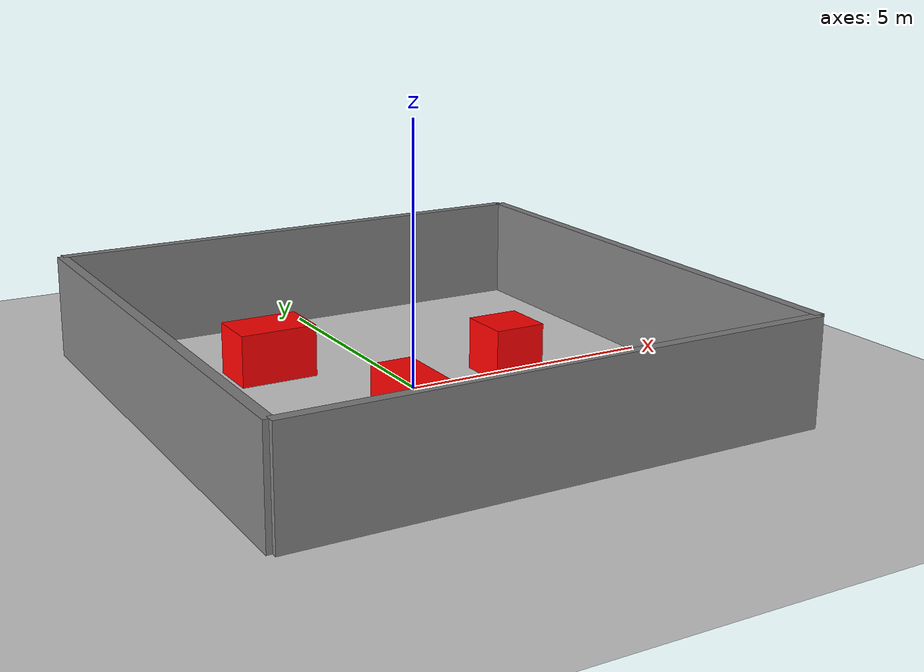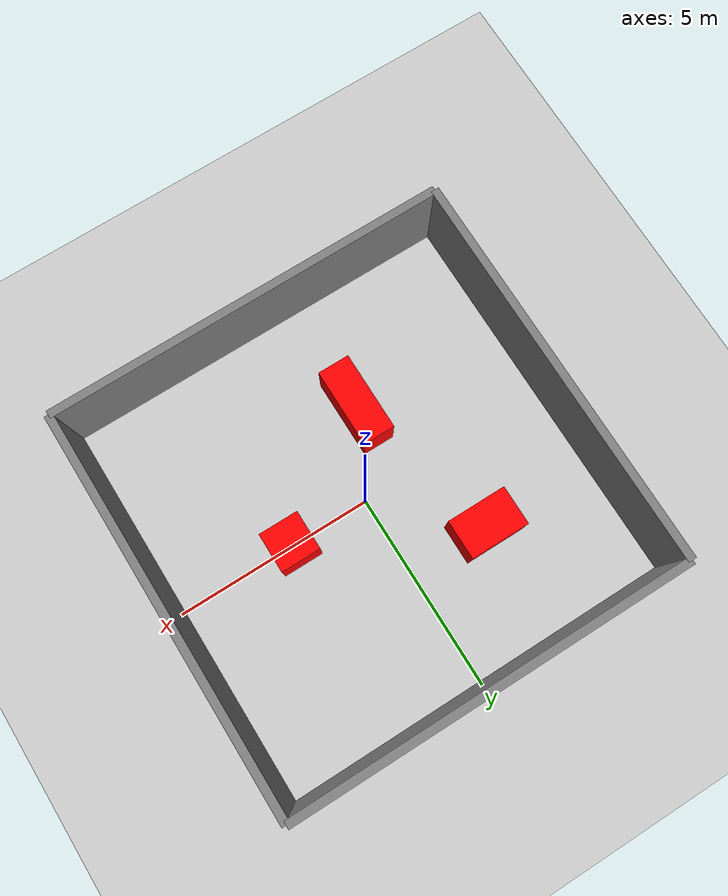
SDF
<?xml version="1.0" ?>
<sdf version="1.8">

  <world name="burger_world">

    <!-- Physics -->

    <physics type="ode">
      <max_step_size>0.001</max_step_size>
      <real_time_factor>1.0</real_time_factor>
    </physics>

    <gravity>0 0 -9.81</gravity>

    <!-- Sun -->

    <light name="sun" type="directional">
      <cast_shadows>true</cast_shadows>

      <pose>0 0 10 0 0 0</pose>

      <diffuse>1 1 1 1</diffuse>
      <specular>0.2 0.2 0.2 1</specular>

      <direction>-0.5 0.1 -1</direction>
    </light>

    <!-- Ground -->

    <model name="ground_plane">
      <static>true</static>

      <link name="link">

        <collision name="collision">
          <geometry>
            <plane>
              <normal>0 0 1</normal>
              <size>20 20</size>
            </plane>
          </geometry>
        </collision>

        <visual name="visual">
          <geometry>
            <plane>
              <normal>0 0 1</normal>
              <size>20 20</size>
            </plane>
          </geometry>

          <material>
            <ambient>0.8 0.8 0.8 1</ambient>
            <diffuse>0.8 0.8 0.8 1</diffuse>
          </material>

        </visual>

      </link>

    </model>

    <!-- NORTH WALL -->

    <model name="wall_north">
      <static>true</static>
      <pose>0 5 1 0 0 0</pose>

      <link name="link">

        <collision name="collision">
          <geometry>
            <box>
              <size>10 0.2 2</size>
            </box>
          </geometry>
        </collision>

        <visual name="visual">
          <geometry>
            <box>
              <size>10 0.2 2</size>
            </box>
          </geometry>

          <material>
            <ambient>0.5 0.5 0.5 1</ambient>
            <diffuse>0.5 0.5 0.5 1</diffuse>
          </material>

        </visual>

      </link>

    </model>

    <!-- SOUTH WALL -->

    <model name="wall_south">
      <static>true</static>
      <pose>0 -5 1 0 0 0</pose>

      <link name="link">

        <collision name="collision">
          <geometry>
            <box>
              <size>10 0.2 2</size>
            </box>
          </geometry>
        </collision>

        <visual name="visual">
          <geometry>
            <box>
              <size>10 0.2 2</size>
            </box>
          </geometry>

          <material>
            <ambient>0.5 0.5 0.5 1</ambient>
            <diffuse>0.5 0.5 0.5 1</diffuse>
          </material>

        </visual>

      </link>

    </model>

    <!-- EAST WALL -->

    <model name="wall_east">
      <static>true</static>
      <pose>5 0 1 0 0 0</pose>

      <link name="link">

        <collision name="collision">
          <geometry>
            <box>
              <size>0.2 10 2</size>
            </box>
          </geometry>
        </collision>

        <visual name="visual">
          <geometry>
            <box>
              <size>0.2 10 2</size>
            </box>
          </geometry>

          <material>
            <ambient>0.5 0.5 0.5 1</ambient>
            <diffuse>0.5 0.5 0.5 1</diffuse>
          </material>

        </visual>

      </link>

    </model>

    <!-- WEST WALL -->

    <model name="wall_west">
      <static>true</static>
      <pose>-5 0 1 0 0 0</pose>

      <link name="link">

        <collision name="collision">
          <geometry>
            <box>
              <size>0.2 10 2</size>
            </box>
          </geometry>
        </collision>

        <visual name="visual">
          <geometry>
            <box>
              <size>0.2 10 2</size>
            </box>
          </geometry>

          <material>
            <ambient>0.5 0.5 0.5 1</ambient>
            <diffuse>0.5 0.5 0.5 1</diffuse>
          </material>

        </visual>

      </link>

    </model>

    <!-- RED BOX 1 -->

    <model name="box1">
      <static>true</static>
      <pose>2 0 0.5 0 0 0</pose>

      <link name="link">

        <collision name="collision">
          <geometry>
            <box>
              <size>1 1 1</size>
            </box>
          </geometry>
        </collision>

        <visual name="visual">
          <geometry>
            <box>
              <size>1 1 1</size>
            </box>
          </geometry>

          <material>
            <ambient>1 0 0 1</ambient>
            <diffuse>1 0 0 1</diffuse>
          </material>

        </visual>

      </link>

    </model>

    <!-- RED BOX 2 -->

    <model name="box2">
      <static>true</static>
      <pose>-2 2 0.5 0 0 0</pose>

      <link name="link">

        <collision name="collision">
          <geometry>
            <box>
              <size>1.5 1 1</size>
            </box>
          </geometry>
        </collision>

        <visual name="visual">
          <geometry>
            <box>
              <size>1.5 1 1</size>
            </box>
          </geometry>

          <material>
            <ambient>1 0 0 1</ambient>
            <diffuse>1 0 0 1</diffuse>
          </material>

        </visual>

      </link>

    </model>

    <!-- RED BOX 3 -->

    <model name="box3">
      <static>true</static>
      <pose>-1 -2 0.5 0 0 0</pose>

      <link name="link">

        <collision name="collision">
          <geometry>
            <box>
              <size>0.8 2 1</size>
            </box>
          </geometry>
        </collision>

        <visual name="visual">
          <geometry>
            <box>
              <size>0.8 2 1</size>
            </box>
          </geometry>

          <material>
            <ambient>1 0 0 1</ambient>
            <diffuse>1 0 0 1</diffuse>
          </material>

        </visual>

      </link>

    </model>

  </world>

</sdf>
